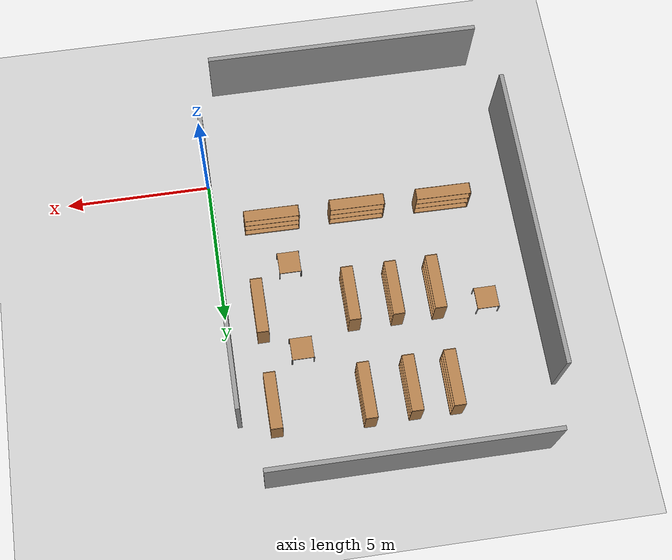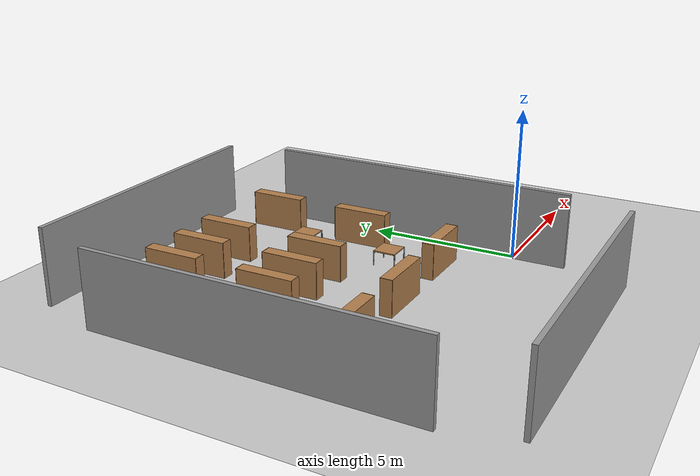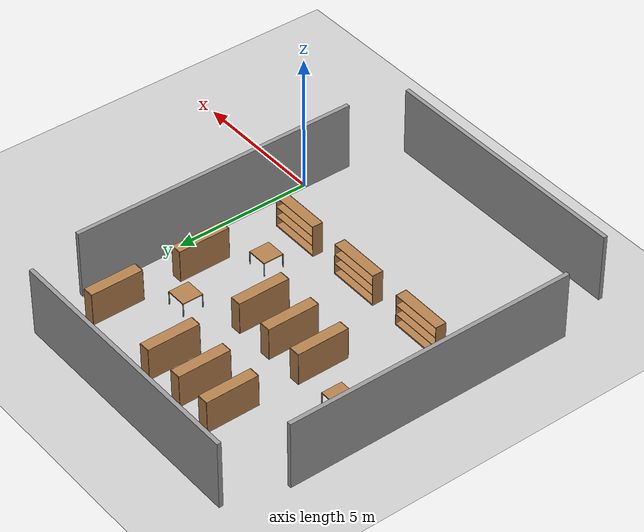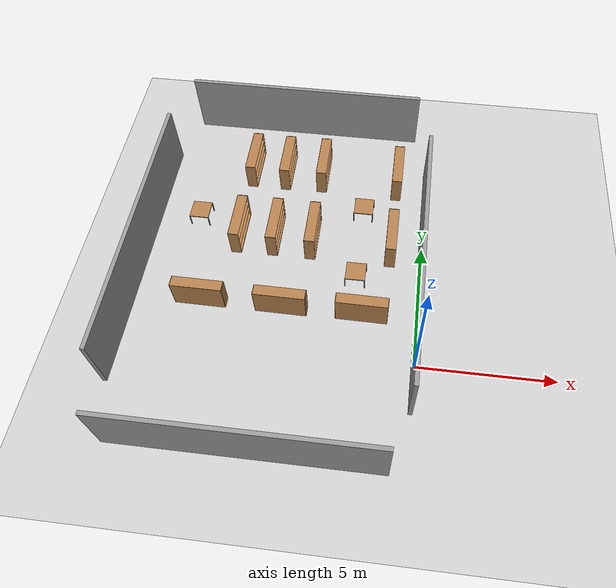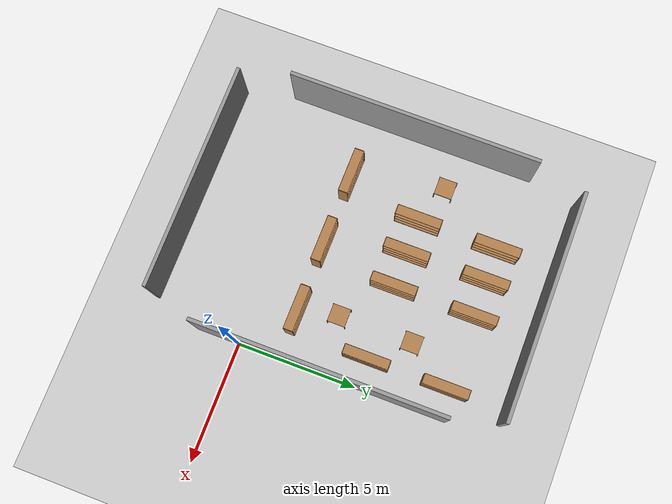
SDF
<sdf version="1.6">
 <world name="default">
  <light name="sun" type="directional">
   <pose>0 0 10 0 -0 0</pose>
   <diffuse>0.8 0.8 0.8 1</diffuse>
   <specular>0.2 0.2 0.2 1</specular>
   <attenuation>
    <range>1000</range>
    <constant>0.9</constant>
    <linear>0.01</linear>
    <quadratic>0.001</quadratic>
   </attenuation>
   <direction>-0.5 0.1 -0.9</direction>
  </light>
  <model name="ground_plane">
   <static>1</static>
   <link name="link">
    <collision name="collision">
     <geometry><plane><normal>0 0 1</normal><size>100 100</size></plane></geometry>
     <surface><friction><ode><mu>100</mu><mu2>50</mu2></ode></friction></surface>
    </collision>
    <visual name="visual">
     <cast_shadows>0</cast_shadows>
     <geometry><plane><normal>0 0 1</normal><size>100 100</size></plane></geometry>
     <material>
      <script><uri>file://media/materials/scripts/gazebo.material</uri><name>Gazebo/Grey</name></script>
     </material>
    </visual>
   </link>
  </model>
  <gravity>0 0 -9.8</gravity>
  <magnetic_field>6e-06 2.3e-05 -4.2e-05</magnetic_field>
  <atmosphere type="adiabatic"/>
  <physics name="default_physics" default="0" type="ode">
   <max_step_size>0.001</max_step_size>
   <real_time_factor>1</real_time_factor>
   <real_time_update_rate>1000</real_time_update_rate>
  </physics>
  <scene><ambient>0.4 0.4 0.4 1</ambient><background>0.7 0.7 0.7 1</background><shadows>1</shadows></scene>
  <audio><device>default</device></audio>
  <spherical_coordinates>
   <surface_model>EARTH_WGS84</surface_model>
   <latitude_deg>0</latitude_deg>
   <longitude_deg>0</longitude_deg>
   <elevation>0</elevation>
   <heading_deg>0</heading_deg>
  </spherical_coordinates>
  <model name="bookshelf_1">
   <static>1</static>
   <link name="link">
    <inertial><mass>1</mass></inertial>
    <collision name="back">
     <pose>0 0.005 0.6 0 -0 0</pose>
     <geometry><box><size>1.9 0.01 1.2</size></box></geometry>
    </collision>
    <visual name="back">
     <pose>0 0.005 0.6 0 -0 0</pose>
     <geometry><box><size>1.9 0.01 1.2</size></box></geometry>
     <material>
      <script><uri>file://media/materials/scripts/gazebo.material</uri><name>Gazebo/Wood</name></script>
     </material>
    </visual>
    <collision name="left_side">
     <pose>0.95 -0.195 0.6 0 -0 0</pose>
     <geometry><box><size>0.02 0.4 1.2</size></box></geometry>
    </collision>
    <visual name="left_side">
     <pose>0.95 -0.195 0.6 0 -0 0</pose>
     <geometry><box><size>0.02 0.4 1.2</size></box></geometry>
     <material>
      <script><uri>file://media/materials/scripts/gazebo.material</uri><name>Gazebo/Wood</name></script>
     </material>
    </visual>
    <collision name="right_side">
     <pose>-0.95 -0.195 0.6 0 -0 0</pose>
     <geometry><box><size>0.02 0.4 1.2</size></box></geometry>
    </collision>
    <visual name="right_side">
     <pose>-0.95 -0.195 0.6 0 -0 0</pose>
     <geometry><box><size>0.02 0.4 1.2</size></box></geometry>
     <material>
      <script><uri>file://media/materials/scripts/gazebo.material</uri><name>Gazebo/Wood</name></script>
     </material>
    </visual>
    <collision name="bottom">
     <pose>0 -0.195 0.03 0 -0 0</pose>
     <geometry><box><size>1.88 0.4 0.06</size></box></geometry>
    </collision>
    <visual name="bottom">
     <pose>0 -0.195 0.03 0 -0 0</pose>
     <geometry><box><size>1.88 0.4 0.06</size></box></geometry>
     <material>
      <script><uri>file://media/materials/scripts/gazebo.material</uri><name>Gazebo/Wood</name></script>
     </material>
    </visual>
    <collision name="top">
     <pose>0 -0.195 1.19 0 -0 0</pose>
     <geometry><box><size>1.88 0.4 0.02</size></box></geometry>
    </collision>
    <visual name="top">
     <pose>0 -0.195 1.19 0 -0 0</pose>
     <geometry><box><size>1.88 0.4 0.02</size></box></geometry>
     <material>
      <script><uri>file://media/materials/scripts/gazebo.material</uri><name>Gazebo/Wood</name></script>
     </material>
    </visual>
    <collision name="low_shelf">
     <pose>0 -0.195 0.43 0 -0 0</pose>
     <geometry><box><size>1.88 0.4 0.02</size></box></geometry>
    </collision>
    <visual name="low_shelf">
     <pose>0 -0.195 0.43 0 -0 0</pose>
     <geometry><box><size>1.88 0.4 0.02</size></box></geometry>
     <material>
      <script><uri>file://media/materials/scripts/gazebo.material</uri><name>Gazebo/Wood</name></script>
     </material>
    </visual>
    <collision name="high_shelf">
     <pose>0 -0.195 0.8 0 -0 0</pose>
     <geometry><box><size>1.88 0.4 0.02</size></box></geometry>
    </collision>
    <visual name="high_shelf">
     <pose>0 -0.195 0.8 0 -0 0</pose>
     <geometry><box><size>1.88 0.4 0.02</size></box></geometry>
     <material>
      <script><uri>file://media/materials/scripts/gazebo.material</uri><name>Gazebo/Wood</name></script>
     </material>
    </visual>
   </link>
   <pose>-8.05857 1.59359 0 0 -0 3.13337</pose>
  </model>
  <model name="table_1">
   <static>1</static>
   <link name="link">
    <collision name="surface">
     <pose>0 0 0.5 0 -0 0</pose>
     <geometry><box><size>0.75 0.75 0.04</size></box></geometry>
    </collision>
    <visual name="visual1">
     <pose>0 0 0.5 0 -0 0</pose>
     <geometry><box><size>0.75 0.75 0.04</size></box></geometry>
     <material>
      <script><uri>file://media/materials/scripts/gazebo.material</uri><name>Gazebo/Wood</name></script>
     </material>
    </visual>
    <collision name="front_left_leg">
     <pose>0.37 0.37 0.25 0 -0 0</pose>
     <geometry><cylinder><radius>0.02</radius><length>0.5</length></cylinder></geometry>
    </collision>
    <visual name="front_left_leg">
     <pose>0.37 0.37 0.25 0 -0 0</pose>
     <geometry><cylinder><radius>0.02</radius><length>0.5</length></cylinder></geometry>
     <material>
      <script><uri>file://media/materials/scripts/gazebo.material</uri><name>Gazebo/Grey</name></script>
     </material>
    </visual>
    <collision name="front_right_leg">
     <pose>0.37 -0.37 0.25 0 -0 0</pose>
     <geometry><cylinder><radius>0.02</radius><length>0.5</length></cylinder></geometry>
    </collision>
    <visual name="front_right_leg">
     <pose>0.37 -0.37 0.25 0 -0 0</pose>
     <geometry><cylinder><radius>0.02</radius><length>0.5</length></cylinder></geometry>
     <material>
      <script><uri>file://media/materials/scripts/gazebo.material</uri><name>Gazebo/Grey</name></script>
     </material>
    </visual>
    <collision name="back_right_leg">
     <pose>-0.37 -0.37 0.25 0 -0 0</pose>
     <geometry><cylinder><radius>0.02</radius><length>0.5</length></cylinder></geometry>
    </collision>
    <visual name="back_right_leg">
     <pose>-0.37 -0.37 0.25 0 -0 0</pose>
     <geometry><cylinder><radius>0.02</radius><length>0.5</length></cylinder></geometry>
     <material>
      <script><uri>file://media/materials/scripts/gazebo.material</uri><name>Gazebo/Grey</name></script>
     </material>
    </visual>
    <collision name="back_left_leg">
     <pose>-0.37 0.37 0.25 0 -0 0</pose>
     <geometry><cylinder><radius>0.02</radius><length>0.5</length></cylinder></geometry>
    </collision>
    <visual name="back_left_leg">
     <pose>-0.37 0.37 0.25 0 -0 0</pose>
     <geometry><cylinder><radius>0.02</radius><length>0.5</length></cylinder></geometry>
     <material>
      <script><uri>file://media/materials/scripts/gazebo.material</uri><name>Gazebo/Grey</name></script>
     </material>
    </visual>
    <velocity_decay><linear>0</linear><angular>0</angular></velocity_decay>
   </link>
   <pose>-2.43615 3.39841 0 0 -0 0</pose>
  </model>
  <model name="table_2">
   <static>1</static>
   <link name="link">
    <collision name="surface">
     <pose>0 0 0.5 0 -0 0</pose>
     <geometry><box><size>0.75 0.75 0.04</size></box></geometry>
    </collision>
    <visual name="visual1">
     <pose>0 0 0.5 0 -0 0</pose>
     <geometry><box><size>0.75 0.75 0.04</size></box></geometry>
     <material>
      <script><uri>file://media/materials/scripts/gazebo.material</uri><name>Gazebo/Wood</name></script>
     </material>
    </visual>
    <collision name="front_left_leg">
     <pose>0.37 0.37 0.25 0 -0 0</pose>
     <geometry><cylinder><radius>0.02</radius><length>0.5</length></cylinder></geometry>
    </collision>
    <visual name="front_left_leg">
     <pose>0.37 0.37 0.25 0 -0 0</pose>
     <geometry><cylinder><radius>0.02</radius><length>0.5</length></cylinder></geometry>
     <material>
      <script><uri>file://media/materials/scripts/gazebo.material</uri><name>Gazebo/Grey</name></script>
     </material>
    </visual>
    <collision name="front_right_leg">
     <pose>0.37 -0.37 0.25 0 -0 0</pose>
     <geometry><cylinder><radius>0.02</radius><length>0.5</length></cylinder></geometry>
    </collision>
    <visual name="front_right_leg">
     <pose>0.37 -0.37 0.25 0 -0 0</pose>
     <geometry><cylinder><radius>0.02</radius><length>0.5</length></cylinder></geometry>
     <material>
      <script><uri>file://media/materials/scripts/gazebo.material</uri><name>Gazebo/Grey</name></script>
     </material>
    </visual>
    <collision name="back_right_leg">
     <pose>-0.37 -0.37 0.25 0 -0 0</pose>
     <geometry><cylinder><radius>0.02</radius><length>0.5</length></cylinder></geometry>
    </collision>
    <visual name="back_right_leg">
     <pose>-0.37 -0.37 0.25 0 -0 0</pose>
     <geometry><cylinder><radius>0.02</radius><length>0.5</length></cylinder></geometry>
     <material>
      <script><uri>file://media/materials/scripts/gazebo.material</uri><name>Gazebo/Grey</name></script>
     </material>
    </visual>
    <collision name="back_left_leg">
     <pose>-0.37 0.37 0.25 0 -0 0</pose>
     <geometry><cylinder><radius>0.02</radius><length>0.5</length></cylinder></geometry>
    </collision>
    <visual name="back_left_leg">
     <pose>-0.37 0.37 0.25 0 -0 0</pose>
     <geometry><cylinder><radius>0.02</radius><length>0.5</length></cylinder></geometry>
     <material>
      <script><uri>file://media/materials/scripts/gazebo.material</uri><name>Gazebo/Grey</name></script>
     </material>
    </visual>
    <velocity_decay><linear>0</linear><angular>0</angular></velocity_decay>
   </link>
   <pose>-2.42969 6.50991 0 0 -0 0</pose>
  </model>
  <model name="table_3">
   <static>1</static>
   <link name="link">
    <collision name="surface">
     <pose>0 0 0.5 0 -0 0</pose>
     <geometry><box><size>0.75 0.75 0.04</size></box></geometry>
    </collision>
    <visual name="visual1">
     <pose>0 0 0.5 0 -0 0</pose>
     <geometry><box><size>0.75 0.75 0.04</size></box></geometry>
     <material>
      <script><uri>file://media/materials/scripts/gazebo.material</uri><name>Gazebo/Wood</name></script>
     </material>
    </visual>
    <collision name="front_left_leg">
     <pose>0.37 0.37 0.25 0 -0 0</pose>
     <geometry><cylinder><radius>0.02</radius><length>0.5</length></cylinder></geometry>
    </collision>
    <visual name="front_left_leg">
     <pose>0.37 0.37 0.25 0 -0 0</pose>
     <geometry><cylinder><radius>0.02</radius><length>0.5</length></cylinder></geometry>
     <material>
      <script><uri>file://media/materials/scripts/gazebo.material</uri><name>Gazebo/Grey</name></script>
     </material>
    </visual>
    <collision name="front_right_leg">
     <pose>0.37 -0.37 0.25 0 -0 0</pose>
     <geometry><cylinder><radius>0.02</radius><length>0.5</length></cylinder></geometry>
    </collision>
    <visual name="front_right_leg">
     <pose>0.37 -0.37 0.25 0 -0 0</pose>
     <geometry><cylinder><radius>0.02</radius><length>0.5</length></cylinder></geometry>
     <material>
      <script><uri>file://media/materials/scripts/gazebo.material</uri><name>Gazebo/Grey</name></script>
     </material>
    </visual>
    <collision name="back_right_leg">
     <pose>-0.37 -0.37 0.25 0 -0 0</pose>
     <geometry><cylinder><radius>0.02</radius><length>0.5</length></cylinder></geometry>
    </collision>
    <visual name="back_right_leg">
     <pose>-0.37 -0.37 0.25 0 -0 0</pose>
     <geometry><cylinder><radius>0.02</radius><length>0.5</length></cylinder></geometry>
     <material>
      <script><uri>file://media/materials/scripts/gazebo.material</uri><name>Gazebo/Grey</name></script>
     </material>
    </visual>
    <collision name="back_left_leg">
     <pose>-0.37 0.37 0.25 0 -0 0</pose>
     <geometry><cylinder><radius>0.02</radius><length>0.5</length></cylinder></geometry>
    </collision>
    <visual name="back_left_leg">
     <pose>-0.37 0.37 0.25 0 -0 0</pose>
     <geometry><cylinder><radius>0.02</radius><length>0.5</length></cylinder></geometry>
     <material>
      <script><uri>file://media/materials/scripts/gazebo.material</uri><name>Gazebo/Grey</name></script>
     </material>
    </visual>
    <velocity_decay><linear>0</linear><angular>0</angular></velocity_decay>
   </link>
   <pose>-8.9174 5.6033 0 0 -0 0</pose>
  </model>
  <model name="walls">
   <pose>-5.34 3.52 0 0 -0 0</pose>
   <link name="wall_1">
    <collision name="wall_1_Collision">
     <geometry><box><size>9.5 0.15 2.5</size></box></geometry>
     <pose>0 0 1.25 0 -0 0</pose>
    </collision>
    <visual name="wall_1_Visual">
     <pose>0 0 1.25 0 -0 0</pose>
     <geometry><box><size>9.5 0.15 2.5</size></box></geometry>
     <material>
      <script><uri>file://media/materials/scripts/gazebo.material</uri><name>Gazebo/Grey</name></script>
      <ambient>1 1 1 1</ambient>
     </material>
     <meta><layer>0</layer></meta>
    </visual>
    <pose>0 -7.3 0 0 -0 0</pose>
   </link>
   <link name="wall_2">
    <collision name="wall_2_Collision">
     <geometry><box><size>10.55 0.15 2.5</size></box></geometry>
     <pose>0 0 1.25 0 -0 0</pose>
    </collision>
    <visual name="wall_2_Visual">
     <pose>0 0 1.25 0 -0 0</pose>
     <geometry><box><size>10.55 0.15 2.5</size></box></geometry>
     <material>
      <script><uri>file://media/materials/scripts/gazebo.material</uri><name>Gazebo/Grey</name></script>
      <ambient>1 1 1 1</ambient>
     </material>
     <meta><layer>0</layer></meta>
    </visual>
    <pose>5.3 0 0 0 -0 1.5708</pose>
   </link>
   <link name="wall_3">
    <collision name="wall_3_Collision">
     <geometry><box><size>9.5 0.15 2.5</size></box></geometry>
     <pose>0 0 1.25 0 -0 0</pose>
    </collision>
    <visual name="wall_3_Visual">
     <pose>0 0 1.25 0 -0 0</pose>
     <geometry><box><size>9.5 0.15 2.5</size></box></geometry>
     <material>
      <script><uri>file://media/materials/scripts/gazebo.material</uri><name>Gazebo/Grey</name></script>
      <ambient>1 1 1 1</ambient>
     </material>
     <meta><layer>0</layer></meta>
    </visual>
    <pose>0 7.3 0 0 -0 3.14159</pose>
   </link>
   <link name="wall_4">
    <collision name="wall_4_Collision">
     <geometry><box><size>10.55 0.15 2.5</size></box></geometry>
     <pose>0 0 1.25 0 -0 0</pose>
    </collision>
    <visual name="wall_4_Visual">
     <pose>0 0 1.25 0 -0 0</pose>
     <geometry><box><size>10.55 0.15 2.5</size></box></geometry>
     <material>
      <script><uri>file://media/materials/scripts/gazebo.material</uri><name>Gazebo/Grey</name></script>
      <ambient>1 1 1 1</ambient>
     </material>
     <meta><layer>0</layer></meta>
    </visual>
    <pose>-5.3 0 0 0 -0 -1.5708</pose>
   </link>
   <static>1</static>
  </model>
  <model name="bookshelf_2">
   <static>1</static>
   <link name="link">
    <inertial><mass>1</mass></inertial>
    <collision name="back">
     <pose>0 0.005 0.6 0 -0 0</pose>
     <geometry><box><size>1.9 0.01 1.2</size></box></geometry>
    </collision>
    <visual name="back">
     <pose>0 0.005 0.6 0 -0 0</pose>
     <geometry><box><size>1.9 0.01 1.2</size></box></geometry>
     <material>
      <script><uri>file://media/materials/scripts/gazebo.material</uri><name>Gazebo/Wood</name></script>
     </material>
    </visual>
    <collision name="left_side">
     <pose>0.95 -0.195 0.6 0 -0 0</pose>
     <geometry><box><size>0.02 0.4 1.2</size></box></geometry>
    </collision>
    <visual name="left_side">
     <pose>0.95 -0.195 0.6 0 -0 0</pose>
     <geometry><box><size>0.02 0.4 1.2</size></box></geometry>
     <material>
      <script><uri>file://media/materials/scripts/gazebo.material</uri><name>Gazebo/Wood</name></script>
     </material>
    </visual>
    <collision name="right_side">
     <pose>-0.95 -0.195 0.6 0 -0 0</pose>
     <geometry><box><size>0.02 0.4 1.2</size></box></geometry>
    </collision>
    <visual name="right_side">
     <pose>-0.95 -0.195 0.6 0 -0 0</pose>
     <geometry><box><size>0.02 0.4 1.2</size></box></geometry>
     <material>
      <script><uri>file://media/materials/scripts/gazebo.material</uri><name>Gazebo/Wood</name></script>
     </material>
    </visual>
    <collision name="bottom">
     <pose>0 -0.195 0.03 0 -0 0</pose>
     <geometry><box><size>1.88 0.4 0.06</size></box></geometry>
    </collision>
    <visual name="bottom">
     <pose>0 -0.195 0.03 0 -0 0</pose>
     <geometry><box><size>1.88 0.4 0.06</size></box></geometry>
     <material>
      <script><uri>file://media/materials/scripts/gazebo.material</uri><name>Gazebo/Wood</name></script>
     </material>
    </visual>
    <collision name="top">
     <pose>0 -0.195 1.19 0 -0 0</pose>
     <geometry><box><size>1.88 0.4 0.02</size></box></geometry>
    </collision>
    <visual name="top">
     <pose>0 -0.195 1.19 0 -0 0</pose>
     <geometry><box><size>1.88 0.4 0.02</size></box></geometry>
     <material>
      <script><uri>file://media/materials/scripts/gazebo.material</uri><name>Gazebo/Wood</name></script>
     </material>
    </visual>
    <collision name="low_shelf">
     <pose>0 -0.195 0.43 0 -0 0</pose>
     <geometry><box><size>1.88 0.4 0.02</size></box></geometry>
    </collision>
    <visual name="low_shelf">
     <pose>0 -0.195 0.43 0 -0 0</pose>
     <geometry><box><size>1.88 0.4 0.02</size></box></geometry>
     <material>
      <script><uri>file://media/materials/scripts/gazebo.material</uri><name>Gazebo/Wood</name></script>
     </material>
    </visual>
    <collision name="high_shelf">
     <pose>0 -0.195 0.8 0 -0 0</pose>
     <geometry><box><size>1.88 0.4 0.02</size></box></geometry>
    </collision>
    <visual name="high_shelf">
     <pose>0 -0.195 0.8 0 -0 0</pose>
     <geometry><box><size>1.88 0.4 0.02</size></box></geometry>
     <material>
      <script><uri>file://media/materials/scripts/gazebo.material</uri><name>Gazebo/Wood</name></script>
     </material>
    </visual>
   </link>
   <pose>-4.49496 5.03198 -0.000141 0 0.002317 1.57295</pose>
  </model>
  <model name="bookshelf_3">
   <static>1</static>
   <link name="link">
    <inertial><mass>1</mass></inertial>
    <collision name="back">
     <pose>0 0.005 0.6 0 -0 0</pose>
     <geometry><box><size>1.9 0.01 1.2</size></box></geometry>
    </collision>
    <visual name="back">
     <pose>0 0.005 0.6 0 -0 0</pose>
     <geometry><box><size>1.9 0.01 1.2</size></box></geometry>
     <material>
      <script><uri>file://media/materials/scripts/gazebo.material</uri><name>Gazebo/Wood</name></script>
     </material>
    </visual>
    <collision name="left_side">
     <pose>0.95 -0.195 0.6 0 -0 0</pose>
     <geometry><box><size>0.02 0.4 1.2</size></box></geometry>
    </collision>
    <visual name="left_side">
     <pose>0.95 -0.195 0.6 0 -0 0</pose>
     <geometry><box><size>0.02 0.4 1.2</size></box></geometry>
     <material>
      <script><uri>file://media/materials/scripts/gazebo.material</uri><name>Gazebo/Wood</name></script>
     </material>
    </visual>
    <collision name="right_side">
     <pose>-0.95 -0.195 0.6 0 -0 0</pose>
     <geometry><box><size>0.02 0.4 1.2</size></box></geometry>
    </collision>
    <visual name="right_side">
     <pose>-0.95 -0.195 0.6 0 -0 0</pose>
     <geometry><box><size>0.02 0.4 1.2</size></box></geometry>
     <material>
      <script><uri>file://media/materials/scripts/gazebo.material</uri><name>Gazebo/Wood</name></script>
     </material>
    </visual>
    <collision name="bottom">
     <pose>0 -0.195 0.03 0 -0 0</pose>
     <geometry><box><size>1.88 0.4 0.06</size></box></geometry>
    </collision>
    <visual name="bottom">
     <pose>0 -0.195 0.03 0 -0 0</pose>
     <geometry><box><size>1.88 0.4 0.06</size></box></geometry>
     <material>
      <script><uri>file://media/materials/scripts/gazebo.material</uri><name>Gazebo/Wood</name></script>
     </material>
    </visual>
    <collision name="top">
     <pose>0 -0.195 1.19 0 -0 0</pose>
     <geometry><box><size>1.88 0.4 0.02</size></box></geometry>
    </collision>
    <visual name="top">
     <pose>0 -0.195 1.19 0 -0 0</pose>
     <geometry><box><size>1.88 0.4 0.02</size></box></geometry>
     <material>
      <script><uri>file://media/materials/scripts/gazebo.material</uri><name>Gazebo/Wood</name></script>
     </material>
    </visual>
    <collision name="low_shelf">
     <pose>0 -0.195 0.43 0 -0 0</pose>
     <geometry><box><size>1.88 0.4 0.02</size></box></geometry>
    </collision>
    <visual name="low_shelf">
     <pose>0 -0.195 0.43 0 -0 0</pose>
     <geometry><box><size>1.88 0.4 0.02</size></box></geometry>
     <material>
      <script><uri>file://media/materials/scripts/gazebo.material</uri><name>Gazebo/Wood</name></script>
     </material>
    </visual>
    <collision name="high_shelf">
     <pose>0 -0.195 0.8 0 -0 0</pose>
     <geometry><box><size>1.88 0.4 0.02</size></box></geometry>
    </collision>
    <visual name="high_shelf">
     <pose>0 -0.195 0.8 0 -0 0</pose>
     <geometry><box><size>1.88 0.4 0.02</size></box></geometry>
     <material>
      <script><uri>file://media/materials/scripts/gazebo.material</uri><name>Gazebo/Wood</name></script>
     </material>
    </visual>
   </link>
   <pose>-4.4936 8.41222 -0.001027 0 0.002317 1.57295</pose>
  </model>
  <model name="bookshelf_4">
   <static>1</static>
   <link name="link">
    <inertial><mass>1</mass></inertial>
    <collision name="back">
     <pose>0 0.005 0.6 0 -0 0</pose>
     <geometry><box><size>1.9 0.01 1.2</size></box></geometry>
    </collision>
    <visual name="back">
     <pose>0 0.005 0.6 0 -0 0</pose>
     <geometry><box><size>1.9 0.01 1.2</size></box></geometry>
     <material>
      <script><uri>file://media/materials/scripts/gazebo.material</uri><name>Gazebo/Wood</name></script>
     </material>
    </visual>
    <collision name="left_side">
     <pose>0.95 -0.195 0.6 0 -0 0</pose>
     <geometry><box><size>0.02 0.4 1.2</size></box></geometry>
    </collision>
    <visual name="left_side">
     <pose>0.95 -0.195 0.6 0 -0 0</pose>
     <geometry><box><size>0.02 0.4 1.2</size></box></geometry>
     <material>
      <script><uri>file://media/materials/scripts/gazebo.material</uri><name>Gazebo/Wood</name></script>
     </material>
    </visual>
    <collision name="right_side">
     <pose>-0.95 -0.195 0.6 0 -0 0</pose>
     <geometry><box><size>0.02 0.4 1.2</size></box></geometry>
    </collision>
    <visual name="right_side">
     <pose>-0.95 -0.195 0.6 0 -0 0</pose>
     <geometry><box><size>0.02 0.4 1.2</size></box></geometry>
     <material>
      <script><uri>file://media/materials/scripts/gazebo.material</uri><name>Gazebo/Wood</name></script>
     </material>
    </visual>
    <collision name="bottom">
     <pose>0 -0.195 0.03 0 -0 0</pose>
     <geometry><box><size>1.88 0.4 0.06</size></box></geometry>
    </collision>
    <visual name="bottom">
     <pose>0 -0.195 0.03 0 -0 0</pose>
     <geometry><box><size>1.88 0.4 0.06</size></box></geometry>
     <material>
      <script><uri>file://media/materials/scripts/gazebo.material</uri><name>Gazebo/Wood</name></script>
     </material>
    </visual>
    <collision name="top">
     <pose>0 -0.195 1.19 0 -0 0</pose>
     <geometry><box><size>1.88 0.4 0.02</size></box></geometry>
    </collision>
    <visual name="top">
     <pose>0 -0.195 1.19 0 -0 0</pose>
     <geometry><box><size>1.88 0.4 0.02</size></box></geometry>
     <material>
      <script><uri>file://media/materials/scripts/gazebo.material</uri><name>Gazebo/Wood</name></script>
     </material>
    </visual>
    <collision name="low_shelf">
     <pose>0 -0.195 0.43 0 -0 0</pose>
     <geometry><box><size>1.88 0.4 0.02</size></box></geometry>
    </collision>
    <visual name="low_shelf">
     <pose>0 -0.195 0.43 0 -0 0</pose>
     <geometry><box><size>1.88 0.4 0.02</size></box></geometry>
     <material>
      <script><uri>file://media/materials/scripts/gazebo.material</uri><name>Gazebo/Wood</name></script>
     </material>
    </visual>
    <collision name="high_shelf">
     <pose>0 -0.195 0.8 0 -0 0</pose>
     <geometry><box><size>1.88 0.4 0.02</size></box></geometry>
    </collision>
    <visual name="high_shelf">
     <pose>0 -0.195 0.8 0 -0 0</pose>
     <geometry><box><size>1.88 0.4 0.02</size></box></geometry>
     <material>
      <script><uri>file://media/materials/scripts/gazebo.material</uri><name>Gazebo/Wood</name></script>
     </material>
    </visual>
   </link>
   <pose>-6.00288 8.37577 -0.000963 0 0.002317 1.57295</pose>
  </model>
  <model name="bookshelf_5">
   <static>1</static>
   <link name="link">
    <inertial><mass>1</mass></inertial>
    <collision name="back">
     <pose>0 0.005 0.6 0 -0 0</pose>
     <geometry><box><size>1.9 0.01 1.2</size></box></geometry>
    </collision>
    <visual name="back">
     <pose>0 0.005 0.6 0 -0 0</pose>
     <geometry><box><size>1.9 0.01 1.2</size></box></geometry>
     <material>
      <script><uri>file://media/materials/scripts/gazebo.material</uri><name>Gazebo/Wood</name></script>
     </material>
    </visual>
    <collision name="left_side">
     <pose>0.95 -0.195 0.6 0 -0 0</pose>
     <geometry><box><size>0.02 0.4 1.2</size></box></geometry>
    </collision>
    <visual name="left_side">
     <pose>0.95 -0.195 0.6 0 -0 0</pose>
     <geometry><box><size>0.02 0.4 1.2</size></box></geometry>
     <material>
      <script><uri>file://media/materials/scripts/gazebo.material</uri><name>Gazebo/Wood</name></script>
     </material>
    </visual>
    <collision name="right_side">
     <pose>-0.95 -0.195 0.6 0 -0 0</pose>
     <geometry><box><size>0.02 0.4 1.2</size></box></geometry>
    </collision>
    <visual name="right_side">
     <pose>-0.95 -0.195 0.6 0 -0 0</pose>
     <geometry><box><size>0.02 0.4 1.2</size></box></geometry>
     <material>
      <script><uri>file://media/materials/scripts/gazebo.material</uri><name>Gazebo/Wood</name></script>
     </material>
    </visual>
    <collision name="bottom">
     <pose>0 -0.195 0.03 0 -0 0</pose>
     <geometry><box><size>1.88 0.4 0.06</size></box></geometry>
    </collision>
    <visual name="bottom">
     <pose>0 -0.195 0.03 0 -0 0</pose>
     <geometry><box><size>1.88 0.4 0.06</size></box></geometry>
     <material>
      <script><uri>file://media/materials/scripts/gazebo.material</uri><name>Gazebo/Wood</name></script>
     </material>
    </visual>
    <collision name="top">
     <pose>0 -0.195 1.19 0 -0 0</pose>
     <geometry><box><size>1.88 0.4 0.02</size></box></geometry>
    </collision>
    <visual name="top">
     <pose>0 -0.195 1.19 0 -0 0</pose>
     <geometry><box><size>1.88 0.4 0.02</size></box></geometry>
     <material>
      <script><uri>file://media/materials/scripts/gazebo.material</uri><name>Gazebo/Wood</name></script>
     </material>
    </visual>
    <collision name="low_shelf">
     <pose>0 -0.195 0.43 0 -0 0</pose>
     <geometry><box><size>1.88 0.4 0.02</size></box></geometry>
    </collision>
    <visual name="low_shelf">
     <pose>0 -0.195 0.43 0 -0 0</pose>
     <geometry><box><size>1.88 0.4 0.02</size></box></geometry>
     <material>
      <script><uri>file://media/materials/scripts/gazebo.material</uri><name>Gazebo/Wood</name></script>
     </material>
    </visual>
    <collision name="high_shelf">
     <pose>0 -0.195 0.8 0 -0 0</pose>
     <geometry><box><size>1.88 0.4 0.02</size></box></geometry>
    </collision>
    <visual name="high_shelf">
     <pose>0 -0.195 0.8 0 -0 0</pose>
     <geometry><box><size>1.88 0.4 0.02</size></box></geometry>
     <material>
      <script><uri>file://media/materials/scripts/gazebo.material</uri><name>Gazebo/Wood</name></script>
     </material>
    </visual>
   </link>
   <pose>-5.97352 5.03693 0 0 0.002317 1.57295</pose>
  </model>
  <model name="bookshelf_6">
   <static>1</static>
   <link name="link">
    <inertial><mass>1</mass></inertial>
    <collision name="back">
     <pose>0 0.005 0.6 0 -0 0</pose>
     <geometry><box><size>1.9 0.01 1.2</size></box></geometry>
    </collision>
    <visual name="back">
     <pose>0 0.005 0.6 0 -0 0</pose>
     <geometry><box><size>1.9 0.01 1.2</size></box></geometry>
     <material>
      <script><uri>file://media/materials/scripts/gazebo.material</uri><name>Gazebo/Wood</name></script>
     </material>
    </visual>
    <collision name="left_side">
     <pose>0.95 -0.195 0.6 0 -0 0</pose>
     <geometry><box><size>0.02 0.4 1.2</size></box></geometry>
    </collision>
    <visual name="left_side">
     <pose>0.95 -0.195 0.6 0 -0 0</pose>
     <geometry><box><size>0.02 0.4 1.2</size></box></geometry>
     <material>
      <script><uri>file://media/materials/scripts/gazebo.material</uri><name>Gazebo/Wood</name></script>
     </material>
    </visual>
    <collision name="right_side">
     <pose>-0.95 -0.195 0.6 0 -0 0</pose>
     <geometry><box><size>0.02 0.4 1.2</size></box></geometry>
    </collision>
    <visual name="right_side">
     <pose>-0.95 -0.195 0.6 0 -0 0</pose>
     <geometry><box><size>0.02 0.4 1.2</size></box></geometry>
     <material>
      <script><uri>file://media/materials/scripts/gazebo.material</uri><name>Gazebo/Wood</name></script>
     </material>
    </visual>
    <collision name="bottom">
     <pose>0 -0.195 0.03 0 -0 0</pose>
     <geometry><box><size>1.88 0.4 0.06</size></box></geometry>
    </collision>
    <visual name="bottom">
     <pose>0 -0.195 0.03 0 -0 0</pose>
     <geometry><box><size>1.88 0.4 0.06</size></box></geometry>
     <material>
      <script><uri>file://media/materials/scripts/gazebo.material</uri><name>Gazebo/Wood</name></script>
     </material>
    </visual>
    <collision name="top">
     <pose>0 -0.195 1.19 0 -0 0</pose>
     <geometry><box><size>1.88 0.4 0.02</size></box></geometry>
    </collision>
    <visual name="top">
     <pose>0 -0.195 1.19 0 -0 0</pose>
     <geometry><box><size>1.88 0.4 0.02</size></box></geometry>
     <material>
      <script><uri>file://media/materials/scripts/gazebo.material</uri><name>Gazebo/Wood</name></script>
     </material>
    </visual>
    <collision name="low_shelf">
     <pose>0 -0.195 0.43 0 -0 0</pose>
     <geometry><box><size>1.88 0.4 0.02</size></box></geometry>
    </collision>
    <visual name="low_shelf">
     <pose>0 -0.195 0.43 0 -0 0</pose>
     <geometry><box><size>1.88 0.4 0.02</size></box></geometry>
     <material>
      <script><uri>file://media/materials/scripts/gazebo.material</uri><name>Gazebo/Wood</name></script>
     </material>
    </visual>
    <collision name="high_shelf">
     <pose>0 -0.195 0.8 0 -0 0</pose>
     <geometry><box><size>1.88 0.4 0.02</size></box></geometry>
    </collision>
    <visual name="high_shelf">
     <pose>0 -0.195 0.8 0 -0 0</pose>
     <geometry><box><size>1.88 0.4 0.02</size></box></geometry>
     <material>
      <script><uri>file://media/materials/scripts/gazebo.material</uri><name>Gazebo/Wood</name></script>
     </material>
    </visual>
   </link>
   <pose>-7.40025 5.01795 0 0 0.002317 1.57295</pose>
  </model>
  <model name="bookshelf_7">
   <static>1</static>
   <link name="link">
    <inertial><mass>1</mass></inertial>
    <collision name="back">
     <pose>0 0.005 0.6 0 -0 0</pose>
     <geometry><box><size>1.9 0.01 1.2</size></box></geometry>
    </collision>
    <visual name="back">
     <pose>0 0.005 0.6 0 -0 0</pose>
     <geometry><box><size>1.9 0.01 1.2</size></box></geometry>
     <material>
      <script><uri>file://media/materials/scripts/gazebo.material</uri><name>Gazebo/Wood</name></script>
     </material>
    </visual>
    <collision name="left_side">
     <pose>0.95 -0.195 0.6 0 -0 0</pose>
     <geometry><box><size>0.02 0.4 1.2</size></box></geometry>
    </collision>
    <visual name="left_side">
     <pose>0.95 -0.195 0.6 0 -0 0</pose>
     <geometry><box><size>0.02 0.4 1.2</size></box></geometry>
     <material>
      <script><uri>file://media/materials/scripts/gazebo.material</uri><name>Gazebo/Wood</name></script>
     </material>
    </visual>
    <collision name="right_side">
     <pose>-0.95 -0.195 0.6 0 -0 0</pose>
     <geometry><box><size>0.02 0.4 1.2</size></box></geometry>
    </collision>
    <visual name="right_side">
     <pose>-0.95 -0.195 0.6 0 -0 0</pose>
     <geometry><box><size>0.02 0.4 1.2</size></box></geometry>
     <material>
      <script><uri>file://media/materials/scripts/gazebo.material</uri><name>Gazebo/Wood</name></script>
     </material>
    </visual>
    <collision name="bottom">
     <pose>0 -0.195 0.03 0 -0 0</pose>
     <geometry><box><size>1.88 0.4 0.06</size></box></geometry>
    </collision>
    <visual name="bottom">
     <pose>0 -0.195 0.03 0 -0 0</pose>
     <geometry><box><size>1.88 0.4 0.06</size></box></geometry>
     <material>
      <script><uri>file://media/materials/scripts/gazebo.material</uri><name>Gazebo/Wood</name></script>
     </material>
    </visual>
    <collision name="top">
     <pose>0 -0.195 1.19 0 -0 0</pose>
     <geometry><box><size>1.88 0.4 0.02</size></box></geometry>
    </collision>
    <visual name="top">
     <pose>0 -0.195 1.19 0 -0 0</pose>
     <geometry><box><size>1.88 0.4 0.02</size></box></geometry>
     <material>
      <script><uri>file://media/materials/scripts/gazebo.material</uri><name>Gazebo/Wood</name></script>
     </material>
    </visual>
    <collision name="low_shelf">
     <pose>0 -0.195 0.43 0 -0 0</pose>
     <geometry><box><size>1.88 0.4 0.02</size></box></geometry>
    </collision>
    <visual name="low_shelf">
     <pose>0 -0.195 0.43 0 -0 0</pose>
     <geometry><box><size>1.88 0.4 0.02</size></box></geometry>
     <material>
      <script><uri>file://media/materials/scripts/gazebo.material</uri><name>Gazebo/Wood</name></script>
     </material>
    </visual>
    <collision name="high_shelf">
     <pose>0 -0.195 0.8 0 -0 0</pose>
     <geometry><box><size>1.88 0.4 0.02</size></box></geometry>
    </collision>
    <visual name="high_shelf">
     <pose>0 -0.195 0.8 0 -0 0</pose>
     <geometry><box><size>1.88 0.4 0.02</size></box></geometry>
     <material>
      <script><uri>file://media/materials/scripts/gazebo.material</uri><name>Gazebo/Wood</name></script>
     </material>
    </visual>
   </link>
   <pose>-7.39637 8.38548 -0.000881 0 0.002317 1.57295</pose>
  </model>
  <model name="bookshelf_9">
   <static>1</static>
   <link name="link">
    <inertial><mass>1</mass></inertial>
    <collision name="back">
     <pose>0 0.005 0.6 0 -0 0</pose>
     <geometry><box><size>1.9 0.01 1.2</size></box></geometry>
    </collision>
    <visual name="back">
     <pose>0 0.005 0.6 0 -0 0</pose>
     <geometry><box><size>1.9 0.01 1.2</size></box></geometry>
     <material>
      <script><uri>file://media/materials/scripts/gazebo.material</uri><name>Gazebo/Wood</name></script>
     </material>
    </visual>
    <collision name="left_side">
     <pose>0.95 -0.195 0.6 0 -0 0</pose>
     <geometry><box><size>0.02 0.4 1.2</size></box></geometry>
    </collision>
    <visual name="left_side">
     <pose>0.95 -0.195 0.6 0 -0 0</pose>
     <geometry><box><size>0.02 0.4 1.2</size></box></geometry>
     <material>
      <script><uri>file://media/materials/scripts/gazebo.material</uri><name>Gazebo/Wood</name></script>
     </material>
    </visual>
    <collision name="right_side">
     <pose>-0.95 -0.195 0.6 0 -0 0</pose>
     <geometry><box><size>0.02 0.4 1.2</size></box></geometry>
    </collision>
    <visual name="right_side">
     <pose>-0.95 -0.195 0.6 0 -0 0</pose>
     <geometry><box><size>0.02 0.4 1.2</size></box></geometry>
     <material>
      <script><uri>file://media/materials/scripts/gazebo.material</uri><name>Gazebo/Wood</name></script>
     </material>
    </visual>
    <collision name="bottom">
     <pose>0 -0.195 0.03 0 -0 0</pose>
     <geometry><box><size>1.88 0.4 0.06</size></box></geometry>
    </collision>
    <visual name="bottom">
     <pose>0 -0.195 0.03 0 -0 0</pose>
     <geometry><box><size>1.88 0.4 0.06</size></box></geometry>
     <material>
      <script><uri>file://media/materials/scripts/gazebo.material</uri><name>Gazebo/Wood</name></script>
     </material>
    </visual>
    <collision name="top">
     <pose>0 -0.195 1.19 0 -0 0</pose>
     <geometry><box><size>1.88 0.4 0.02</size></box></geometry>
    </collision>
    <visual name="top">
     <pose>0 -0.195 1.19 0 -0 0</pose>
     <geometry><box><size>1.88 0.4 0.02</size></box></geometry>
     <material>
      <script><uri>file://media/materials/scripts/gazebo.material</uri><name>Gazebo/Wood</name></script>
     </material>
    </visual>
    <collision name="low_shelf">
     <pose>0 -0.195 0.43 0 -0 0</pose>
     <geometry><box><size>1.88 0.4 0.02</size></box></geometry>
    </collision>
    <visual name="low_shelf">
     <pose>0 -0.195 0.43 0 -0 0</pose>
     <geometry><box><size>1.88 0.4 0.02</size></box></geometry>
     <material>
      <script><uri>file://media/materials/scripts/gazebo.material</uri><name>Gazebo/Wood</name></script>
     </material>
    </visual>
    <collision name="high_shelf">
     <pose>0 -0.195 0.8 0 -0 0</pose>
     <geometry><box><size>1.88 0.4 0.02</size></box></geometry>
    </collision>
    <visual name="high_shelf">
     <pose>0 -0.195 0.8 0 -0 0</pose>
     <geometry><box><size>1.88 0.4 0.02</size></box></geometry>
     <material>
      <script><uri>file://media/materials/scripts/gazebo.material</uri><name>Gazebo/Wood</name></script>
     </material>
    </visual>
   </link>
   <pose>-1.40002 5.0298 -0.003893 0 0.002317 1.57295</pose>
  </model>
  <model name="bookshelf_10">
   <static>1</static>
   <link name="link">
    <inertial><mass>1</mass></inertial>
    <collision name="back">
     <pose>0 0.005 0.6 0 -0 0</pose>
     <geometry><box><size>1.9 0.01 1.2</size></box></geometry>
    </collision>
    <visual name="back">
     <pose>0 0.005 0.6 0 -0 0</pose>
     <geometry><box><size>1.9 0.01 1.2</size></box></geometry>
     <material>
      <script><uri>file://media/materials/scripts/gazebo.material</uri><name>Gazebo/Wood</name></script>
     </material>
    </visual>
    <collision name="left_side">
     <pose>0.95 -0.195 0.6 0 -0 0</pose>
     <geometry><box><size>0.02 0.4 1.2</size></box></geometry>
    </collision>
    <visual name="left_side">
     <pose>0.95 -0.195 0.6 0 -0 0</pose>
     <geometry><box><size>0.02 0.4 1.2</size></box></geometry>
     <material>
      <script><uri>file://media/materials/scripts/gazebo.material</uri><name>Gazebo/Wood</name></script>
     </material>
    </visual>
    <collision name="right_side">
     <pose>-0.95 -0.195 0.6 0 -0 0</pose>
     <geometry><box><size>0.02 0.4 1.2</size></box></geometry>
    </collision>
    <visual name="right_side">
     <pose>-0.95 -0.195 0.6 0 -0 0</pose>
     <geometry><box><size>0.02 0.4 1.2</size></box></geometry>
     <material>
      <script><uri>file://media/materials/scripts/gazebo.material</uri><name>Gazebo/Wood</name></script>
     </material>
    </visual>
    <collision name="bottom">
     <pose>0 -0.195 0.03 0 -0 0</pose>
     <geometry><box><size>1.88 0.4 0.06</size></box></geometry>
    </collision>
    <visual name="bottom">
     <pose>0 -0.195 0.03 0 -0 0</pose>
     <geometry><box><size>1.88 0.4 0.06</size></box></geometry>
     <material>
      <script><uri>file://media/materials/scripts/gazebo.material</uri><name>Gazebo/Wood</name></script>
     </material>
    </visual>
    <collision name="top">
     <pose>0 -0.195 1.19 0 -0 0</pose>
     <geometry><box><size>1.88 0.4 0.02</size></box></geometry>
    </collision>
    <visual name="top">
     <pose>0 -0.195 1.19 0 -0 0</pose>
     <geometry><box><size>1.88 0.4 0.02</size></box></geometry>
     <material>
      <script><uri>file://media/materials/scripts/gazebo.material</uri><name>Gazebo/Wood</name></script>
     </material>
    </visual>
    <collision name="low_shelf">
     <pose>0 -0.195 0.43 0 -0 0</pose>
     <geometry><box><size>1.88 0.4 0.02</size></box></geometry>
    </collision>
    <visual name="low_shelf">
     <pose>0 -0.195 0.43 0 -0 0</pose>
     <geometry><box><size>1.88 0.4 0.02</size></box></geometry>
     <material>
      <script><uri>file://media/materials/scripts/gazebo.material</uri><name>Gazebo/Wood</name></script>
     </material>
    </visual>
    <collision name="high_shelf">
     <pose>0 -0.195 0.8 0 -0 0</pose>
     <geometry><box><size>1.88 0.4 0.02</size></box></geometry>
    </collision>
    <visual name="high_shelf">
     <pose>0 -0.195 0.8 0 -0 0</pose>
     <geometry><box><size>1.88 0.4 0.02</size></box></geometry>
     <material>
      <script><uri>file://media/materials/scripts/gazebo.material</uri><name>Gazebo/Wood</name></script>
     </material>
    </visual>
   </link>
   <pose>-1.40488 8.32589 -0.002491 0 0.002317 1.57295</pose>
  </model>
  <model name="bookshelf_11">
   <static>1</static>
   <link name="link">
    <inertial><mass>1</mass></inertial>
    <collision name="back">
     <pose>0 0.005 0.6 0 -0 0</pose>
     <geometry><box><size>1.9 0.01 1.2</size></box></geometry>
    </collision>
    <visual name="back">
     <pose>0 0.005 0.6 0 -0 0</pose>
     <geometry><box><size>1.9 0.01 1.2</size></box></geometry>
     <material>
      <script><uri>file://media/materials/scripts/gazebo.material</uri><name>Gazebo/Wood</name></script>
     </material>
    </visual>
    <collision name="left_side">
     <pose>0.95 -0.195 0.6 0 -0 0</pose>
     <geometry><box><size>0.02 0.4 1.2</size></box></geometry>
    </collision>
    <visual name="left_side">
     <pose>0.95 -0.195 0.6 0 -0 0</pose>
     <geometry><box><size>0.02 0.4 1.2</size></box></geometry>
     <material>
      <script><uri>file://media/materials/scripts/gazebo.material</uri><name>Gazebo/Wood</name></script>
     </material>
    </visual>
    <collision name="right_side">
     <pose>-0.95 -0.195 0.6 0 -0 0</pose>
     <geometry><box><size>0.02 0.4 1.2</size></box></geometry>
    </collision>
    <visual name="right_side">
     <pose>-0.95 -0.195 0.6 0 -0 0</pose>
     <geometry><box><size>0.02 0.4 1.2</size></box></geometry>
     <material>
      <script><uri>file://media/materials/scripts/gazebo.material</uri><name>Gazebo/Wood</name></script>
     </material>
    </visual>
    <collision name="bottom">
     <pose>0 -0.195 0.03 0 -0 0</pose>
     <geometry><box><size>1.88 0.4 0.06</size></box></geometry>
    </collision>
    <visual name="bottom">
     <pose>0 -0.195 0.03 0 -0 0</pose>
     <geometry><box><size>1.88 0.4 0.06</size></box></geometry>
     <material>
      <script><uri>file://media/materials/scripts/gazebo.material</uri><name>Gazebo/Wood</name></script>
     </material>
    </visual>
    <collision name="top">
     <pose>0 -0.195 1.19 0 -0 0</pose>
     <geometry><box><size>1.88 0.4 0.02</size></box></geometry>
    </collision>
    <visual name="top">
     <pose>0 -0.195 1.19 0 -0 0</pose>
     <geometry><box><size>1.88 0.4 0.02</size></box></geometry>
     <material>
      <script><uri>file://media/materials/scripts/gazebo.material</uri><name>Gazebo/Wood</name></script>
     </material>
    </visual>
    <collision name="low_shelf">
     <pose>0 -0.195 0.43 0 -0 0</pose>
     <geometry><box><size>1.88 0.4 0.02</size></box></geometry>
    </collision>
    <visual name="low_shelf">
     <pose>0 -0.195 0.43 0 -0 0</pose>
     <geometry><box><size>1.88 0.4 0.02</size></box></geometry>
     <material>
      <script><uri>file://media/materials/scripts/gazebo.material</uri><name>Gazebo/Wood</name></script>
     </material>
    </visual>
    <collision name="high_shelf">
     <pose>0 -0.195 0.8 0 -0 0</pose>
     <geometry><box><size>1.88 0.4 0.02</size></box></geometry>
    </collision>
    <visual name="high_shelf">
     <pose>0 -0.195 0.8 0 -0 0</pose>
     <geometry><box><size>1.88 0.4 0.02</size></box></geometry>
     <material>
      <script><uri>file://media/materials/scripts/gazebo.material</uri><name>Gazebo/Wood</name></script>
     </material>
    </visual>
   </link>
   <pose>-5.02923 1.58206 0 0 -0 3.13337</pose>
  </model>
  <model name="bookshelf_17_clone">
   <static>1</static>
   <link name="link">
    <inertial><mass>1</mass></inertial>
    <collision name="back">
     <pose>0 0.005 0.6 0 -0 0</pose>
     <geometry><box><size>1.9 0.01 1.2</size></box></geometry>
    </collision>
    <visual name="back">
     <pose>0 0.005 0.6 0 -0 0</pose>
     <geometry><box><size>1.9 0.01 1.2</size></box></geometry>
     <material>
      <script><uri>file://media/materials/scripts/gazebo.material</uri><name>Gazebo/Wood</name></script>
     </material>
    </visual>
    <collision name="left_side">
     <pose>0.95 -0.195 0.6 0 -0 0</pose>
     <geometry><box><size>0.02 0.4 1.2</size></box></geometry>
    </collision>
    <visual name="left_side">
     <pose>0.95 -0.195 0.6 0 -0 0</pose>
     <geometry><box><size>0.02 0.4 1.2</size></box></geometry>
     <material>
      <script><uri>file://media/materials/scripts/gazebo.material</uri><name>Gazebo/Wood</name></script>
     </material>
    </visual>
    <collision name="right_side">
     <pose>-0.95 -0.195 0.6 0 -0 0</pose>
     <geometry><box><size>0.02 0.4 1.2</size></box></geometry>
    </collision>
    <visual name="right_side">
     <pose>-0.95 -0.195 0.6 0 -0 0</pose>
     <geometry><box><size>0.02 0.4 1.2</size></box></geometry>
     <material>
      <script><uri>file://media/materials/scripts/gazebo.material</uri><name>Gazebo/Wood</name></script>
     </material>
    </visual>
    <collision name="bottom">
     <pose>0 -0.195 0.03 0 -0 0</pose>
     <geometry><box><size>1.88 0.4 0.06</size></box></geometry>
    </collision>
    <visual name="bottom">
     <pose>0 -0.195 0.03 0 -0 0</pose>
     <geometry><box><size>1.88 0.4 0.06</size></box></geometry>
     <material>
      <script><uri>file://media/materials/scripts/gazebo.material</uri><name>Gazebo/Wood</name></script>
     </material>
    </visual>
    <collision name="top">
     <pose>0 -0.195 1.19 0 -0 0</pose>
     <geometry><box><size>1.88 0.4 0.02</size></box></geometry>
    </collision>
    <visual name="top">
     <pose>0 -0.195 1.19 0 -0 0</pose>
     <geometry><box><size>1.88 0.4 0.02</size></box></geometry>
     <material>
      <script><uri>file://media/materials/scripts/gazebo.material</uri><name>Gazebo/Wood</name></script>
     </material>
    </visual>
    <collision name="low_shelf">
     <pose>0 -0.195 0.43 0 -0 0</pose>
     <geometry><box><size>1.88 0.4 0.02</size></box></geometry>
    </collision>
    <visual name="low_shelf">
     <pose>0 -0.195 0.43 0 -0 0</pose>
     <geometry><box><size>1.88 0.4 0.02</size></box></geometry>
     <material>
      <script><uri>file://media/materials/scripts/gazebo.material</uri><name>Gazebo/Wood</name></script>
     </material>
    </visual>
    <collision name="high_shelf">
     <pose>0 -0.195 0.8 0 -0 0</pose>
     <geometry><box><size>1.88 0.4 0.02</size></box></geometry>
    </collision>
    <visual name="high_shelf">
     <pose>0 -0.195 0.8 0 -0 0</pose>
     <geometry><box><size>1.88 0.4 0.02</size></box></geometry>
     <material>
      <script><uri>file://media/materials/scripts/gazebo.material</uri><name>Gazebo/Wood</name></script>
     </material>
    </visual>
   </link>
   <pose>-2.04608 1.59332 0 0 -0 3.13337</pose>
  </model>
 </world>
</sdf>
